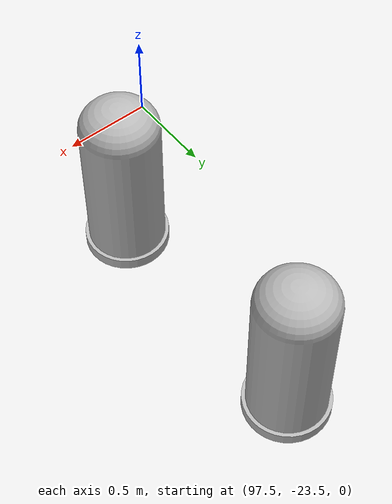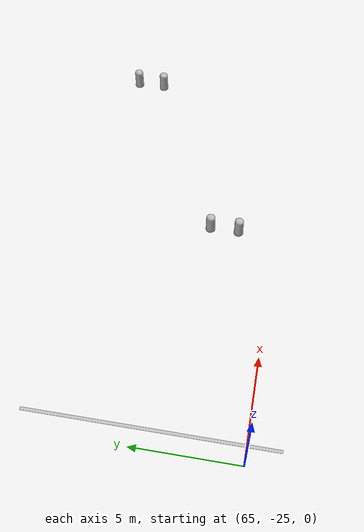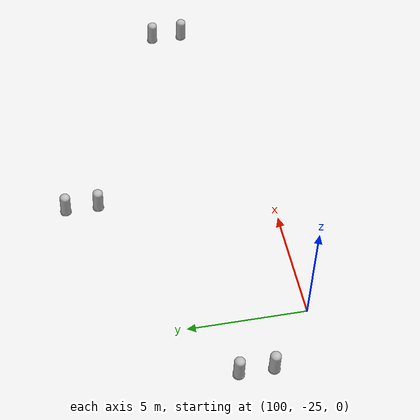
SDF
<sdf version="1.7">
 <world name="parkour_world">
  <light name="sun" type="directional">
   <pose>0 0 10 0 -0 0</pose>
   <diffuse>0.8 0.8 0.8 1</diffuse>
   <specular>0.2 0.2 0.2 1</specular>
   <attenuation>
    <range>1000</range>
    <constant>0.9</constant>
    <linear>0.01</linear>
    <quadratic>0.001</quadratic>
   </attenuation>
   <direction>-0.5 0.1 -0.9</direction>
   <spot><inner_angle>0</inner_angle><outer_angle>0</outer_angle><falloff>0</falloff></spot>
  </light>
  <model name="park_yeri_1">
   <static>1</static>
   <link name="link">
    <visual name="visual">
     <geometry><mesh><uri>model://park_yeri/meshes/park_yeri.obj</uri></mesh></geometry>
    </visual>
    <collision name="collision"><geometry><box><size>4 2 0.01</size></box></geometry></collision>
   </link>
   <pose>12.085 -19.4629 0 0 -0 0</pose>
  </model>
  <model name="park_yeri_2">
   <static>1</static>
   <link name="link">
    <visual name="visual">
     <geometry><mesh><uri>model://park_yeri/meshes/park_yeri.obj</uri></mesh></geometry>
    </visual>
    <collision name="collision"><geometry><box><size>4 2 0.01</size></box></geometry></collision>
   </link>
   <pose>17.2651 -16.2629 0 0 -0 0</pose>
  </model>
  <model name="park_yeri_3">
   <static>1</static>
   <link name="link">
    <visual name="visual">
     <geometry><mesh><uri>model://park_yeri/meshes/park_yeri.obj</uri></mesh></geometry>
    </visual>
    <collision name="collision"><geometry><box><size>4 2 0.01</size></box></geometry></collision>
   </link>
   <pose>17.2651 -22.6629 0 0 -0 0</pose>
  </model>
  <model name="turuncu_cizgi_1">
   <static>1</static>
   <link name="link">
    <visual name="visual">
     <geometry><mesh><uri>model://turuncu_cizgi/meshes/turuncu_cizgi.obj</uri></mesh></geometry>
    </visual>
    <collision name="collision"><geometry><box><size>0.149994 11.4 0.01</size></box></geometry></collision>
   </link>
   <pose>65.8881 -20.7877 0 0 -0 0</pose>
  </model>
  <model name="turuncu_cizgi_2">
   <static>1</static>
   <link name="link">
    <visual name="visual">
     <geometry><mesh><uri>model://turuncu_cizgi/meshes/turuncu_cizgi.obj</uri></mesh></geometry>
    </visual>
    <collision name="collision"><geometry><box><size>0.149994 11.4 0.01</size></box></geometry></collision>
   </link>
   <pose>140.9 -20.8455 0 0 -0 0</pose>
  </model>
  <model name="mavi_duba_1">
   <static>0</static>
   <link name="link">
    <inertial>
     <mass>0.5</mass>
     <inertia><ixx>0.05</ixx><ixy>0</ixy><ixz>0</ixz><iyy>0.05</iyy><iyz>0</iyz><izz>0.05</izz></inertia>
    </inertial>
    <visual name="visual">
     <pose>0 0 -0.55 0 -0 0</pose>
     <geometry><mesh><uri>model://mavi_duba/meshes/mavi_duba.obj</uri></mesh></geometry>
    </visual>
    <collision name="collision"><geometry><box><size>0.493994 0.493994 1.1</size></box></geometry></collision>
   </link>
   <pose>77.0419 -23.1467 0 0 0 0</pose>
  </model>
  <model name="mavi_duba_2">
   <static>0</static>
   <link name="link">
    <inertial>
     <mass>0.5</mass>
     <inertia><ixx>0.05</ixx><ixy>0</ixy><ixz>0</ixz><iyy>0.05</iyy><iyz>0</iyz><izz>0.05</izz></inertia>
    </inertial>
    <visual name="visual">
     <pose>0 0 -0.55 0 -0 0</pose>
     <geometry><mesh><uri>model://mavi_duba/meshes/mavi_duba.obj</uri></mesh></geometry>
    </visual>
    <collision name="collision"><geometry><box><size>0.493994 0.493994 1.1</size></box></geometry></collision>
   </link>
   <pose>77.0419 -21.701 0 0 0 0</pose>
  </model>
  <model name="mavi_duba_3">
   <static>0</static>
   <link name="link">
    <inertial>
     <mass>0.5</mass>
     <inertia><ixx>0.05</ixx><ixy>0</ixy><ixz>0</ixz><iyy>0.05</iyy><iyz>0</iyz><izz>0.05</izz></inertia>
    </inertial>
    <visual name="visual">
     <pose>0 0 -0.55 0 -0 0</pose>
     <geometry><mesh><uri>model://mavi_duba/meshes/mavi_duba.obj</uri></mesh></geometry>
    </visual>
    <collision name="collision"><geometry><box><size>0.493994 0.493994 1.1</size></box></geometry></collision>
   </link>
   <pose>86.5461 -17.4623 0 0 0 0</pose>
  </model>
  <model name="mavi_duba_4">
   <static>0</static>
   <link name="link">
    <inertial>
     <mass>0.5</mass>
     <inertia><ixx>0.05</ixx><ixy>0</ixy><ixz>0</ixz><iyy>0.05</iyy><iyz>0</iyz><izz>0.05</izz></inertia>
    </inertial>
    <visual name="visual">
     <pose>0 0 -0.55 0 0 0</pose>
     <geometry><mesh><uri>model://mavi_duba/meshes/mavi_duba.obj</uri></mesh></geometry>
    </visual>
    <collision name="collision"><geometry><box><size>0.493994 0.493994 1.1</size></box></geometry></collision>
   </link>
   <pose>86.5461 -16.0165 0 0 -0 0</pose>
  </model>
  <model name="mavi_duba_5">
   <static>0</static>
   <link name="link">
    <inertial>
     <mass>0.5</mass>
     <inertia><ixx>0.05</ixx><ixy>0</ixy><ixz>0</ixz><iyy>0.05</iyy><iyz>0</iyz><izz>0.05</izz></inertia>
    </inertial>
    <visual name="visual">
     <pose>0 0 -0.55 0 -0 0</pose>
     <geometry><mesh><uri>model://mavi_duba/meshes/mavi_duba.obj</uri></mesh></geometry>
    </visual>
    <collision name="collision"><geometry><box><size>0.493994 0.493994 1.1</size></box></geometry></collision>
   </link>
   <pose>97.899 -23.1467 0 0 -0 0</pose>
  </model>
  <model name="mavi_duba_6">
   <static>0</static>
   <link name="link">
    <inertial>
     <mass>0.5</mass>
     <inertia><ixx>0.05</ixx><ixy>0</ixy><ixz>0</ixz><iyy>0.05</iyy><iyz>0</iyz><izz>0.05</izz></inertia>
    </inertial>
    <visual name="visual">
     <pose>0 0 -0.55 0 0 0</pose>
     <geometry><mesh><uri>model://mavi_duba/meshes/mavi_duba.obj</uri></mesh></geometry>
    </visual>
    <collision name="collision"><geometry><box><size>0.493994 0.493994 1.1</size></box></geometry></collision>
   </link>
   <pose>97.899 -21.701 0 0 -0 0</pose>
  </model>
  <model name="mavi_duba_7">
   <static>0</static>
   <link name="link">
    <inertial>
     <mass>0.5</mass>
     <inertia><ixx>0.05</ixx><ixy>0</ixy><ixz>0</ixz><iyy>0.05</iyy><iyz>0</iyz><izz>0.05</izz></inertia>
    </inertial>
    <visual name="visual">
     <pose>0 0 -0.55 0 0 0</pose>
     <geometry><mesh><uri>model://mavi_duba/meshes/mavi_duba.obj</uri></mesh></geometry>
    </visual>
    <collision name="collision"><geometry><box><size>0.493994 0.493994 1.1</size></box></geometry></collision>
   </link>
   <pose>107.403 -17.4623 0 0 -0 0</pose>
  </model>
  <model name="mavi_duba_8">
   <static>0</static>
   <link name="link">
    <inertial>
     <mass>0.5</mass>
     <inertia><ixx>0.05</ixx><ixy>0</ixy><ixz>0</ixz><iyy>0.05</iyy><iyz>0</iyz><izz>0.05</izz></inertia>
    </inertial>
    <visual name="visual">
     <pose>0 0 -0.55 0 -0 0</pose>
     <geometry><mesh><uri>model://mavi_duba/meshes/mavi_duba.obj</uri></mesh></geometry>
    </visual>
    <collision name="collision"><geometry><box><size>0.493994 0.493994 1.1</size></box></geometry></collision>
   </link>
   <pose>107.403 -16.0165 0 0 -0 0</pose>
  </model>
  <model name="mavi_duba_9">
   <static>0</static>
   <link name="link">
    <inertial>
     <mass>0.5</mass>
     <inertia><ixx>0.05</ixx><ixy>0</ixy><ixz>0</ixz><iyy>0.05</iyy><iyz>0</iyz><izz>0.05</izz></inertia>
    </inertial>
    <visual name="visual">
     <pose>0 0 -0.55 0 -0 0</pose>
     <geometry><mesh><uri>model://mavi_duba/meshes/mavi_duba.obj</uri></mesh></geometry>
    </visual>
    <collision name="collision"><geometry><box><size>0.493994 0.493994 1.1</size></box></geometry></collision>
   </link>
   <pose>117.758 -23.1467 0 0 -0 0</pose>
  </model>
  <model name="mavi_duba_10">
   <static>0</static>
   <link name="link">
    <inertial>
     <mass>0.5</mass>
     <inertia><ixx>0.05</ixx><ixy>0</ixy><ixz>0</ixz><iyy>0.05</iyy><iyz>0</iyz><izz>0.05</izz></inertia>
    </inertial>
    <visual name="visual">
     <pose>0 0 -0.55 0 -0 0</pose>
     <geometry><mesh><uri>model://mavi_duba/meshes/mavi_duba.obj</uri></mesh></geometry>
    </visual>
    <collision name="collision"><geometry><box><size>0.493994 0.493994 1.1</size></box></geometry></collision>
   </link>
   <pose>117.758 -21.701 0 0 -0 0</pose>
  </model>
  <gravity>0 0 -9.8</gravity>
  <magnetic_field>6e-06 2.3e-05 -4.2e-05</magnetic_field>
  <atmosphere type="adiabatic"/>
  <physics type="ode">
   <max_step_size>0.001</max_step_size>
   <real_time_factor>1</real_time_factor>
   <real_time_update_rate>1000</real_time_update_rate>
  </physics>
  <scene><ambient>0.4 0.4 0.4 1</ambient><background>0.7 0.7 0.7 1</background><shadows>1</shadows></scene>
  <audio><device>default</device></audio>
  <spherical_coordinates>
   <surface_model>EARTH_WGS84</surface_model>
   <latitude_deg>0</latitude_deg>
   <longitude_deg>0</longitude_deg>
   <elevation>0</elevation>
   <heading_deg>0</heading_deg>
  </spherical_coordinates>
 </world>
</sdf>
